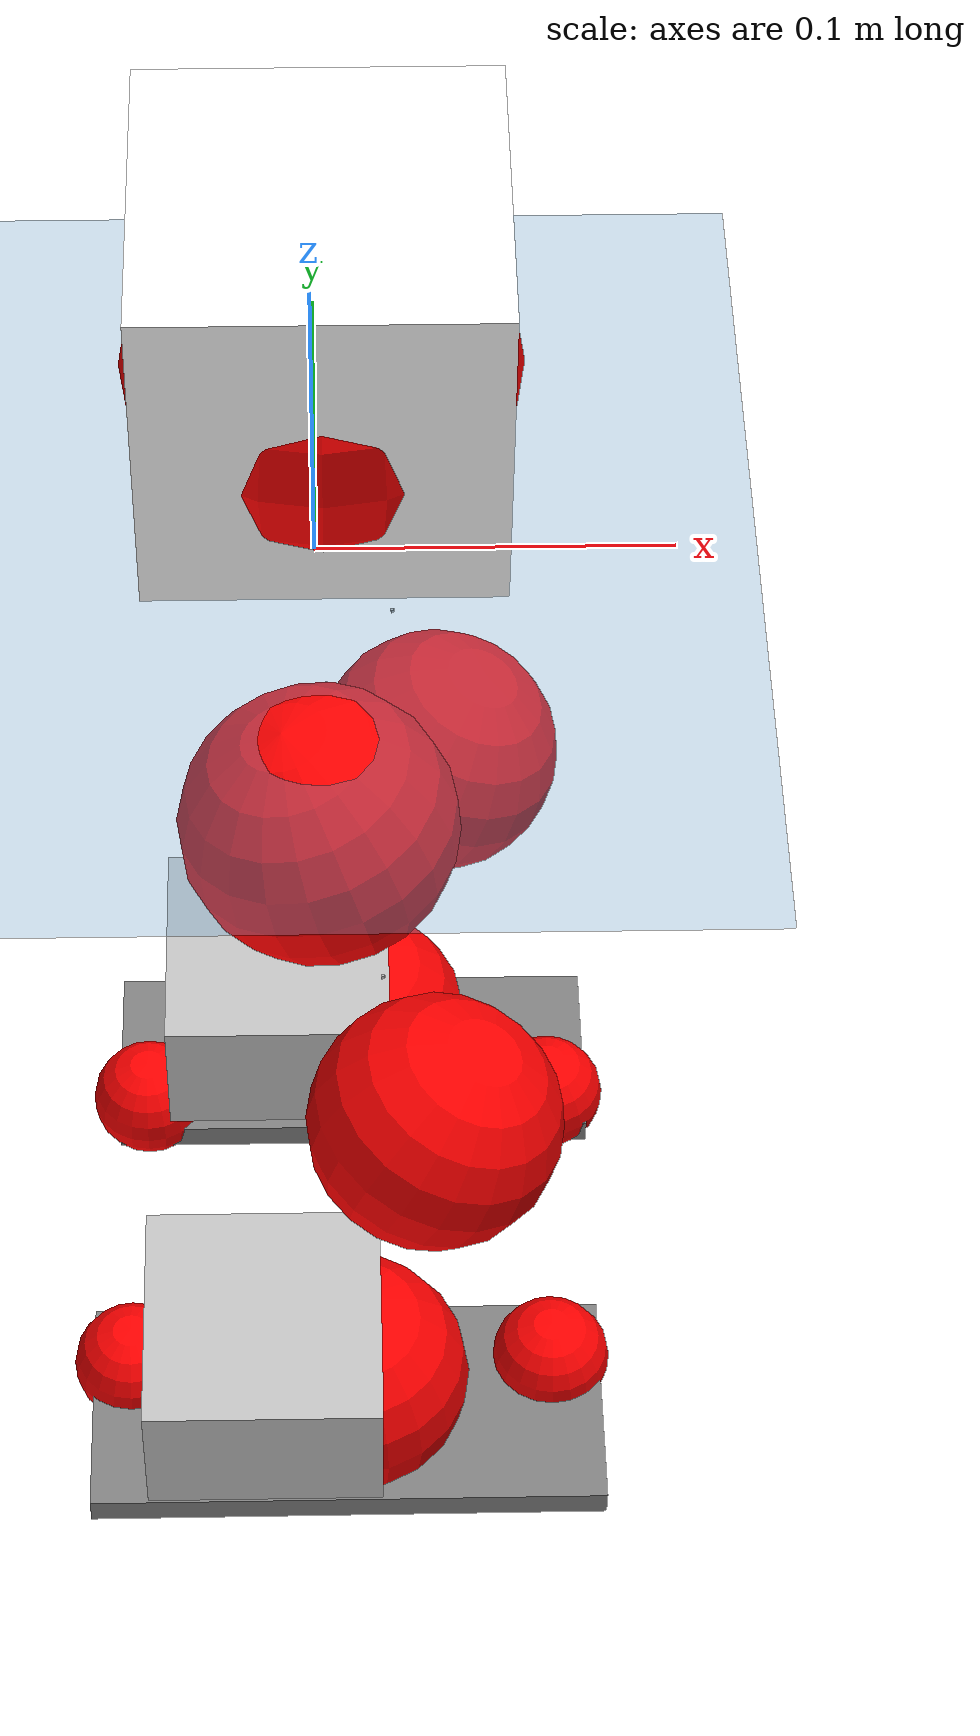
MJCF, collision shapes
<mujoco model="pi_12dof_release_v1">
  <compiler angle="radian" assetdir="assets" balanceinertia="true" inertiafromgeom="false"/>

  <option timestep="0.005" density="1.2" viscosity="2e-05"/>

  <size nkey="1"/>

  <visual>
    <quality shadowsize="8192"/>
    <map shadowclip="0.5"/>
  </visual>

  <default>
    <default class="/">
      <joint armature="0.01" damping="0.01" frictionloss="0.01"/>
      <geom contype="0" conaffinity="0" group="1" solref="-1000 -80"/>
      <site size="0.01 0.005 0.005" group="5"/>
      <general forcelimited="true" biastype="affine" gainprm="20" biasprm="0 -20 -0.5"/>
      <default class="foot">
        <geom size="0.0845 0.036 0.005" type="box" condim="6" group="4" priority="1" friction="0.9 0.2 0.2" solimp="0.015 1 0.005"/>
      </default>
      <default class="reward_collision_sphere">
        <geom group="5" rgba="1 0 0 1"/>
      </default>
    </default>
  </default>

  <asset>
    <texture type="skybox" colorspace="auto" name="//unnamed_texture_0" builtin="gradient" rgb1="0.95 0.95 0.95" rgb2="0.95 0.95 0.95" width="100" height="600"/>
    <texture type="2d" colorspace="auto" name="texplane" builtin="checker" rgb1="0.345 0.575 0.748" rgb2="0.345 0.575 0.748" markrgb="1 1 1" width="512" height="512"/>
    <material name="MatPlane" class="/" texture="texplane" texuniform="true" texrepeat="2 2" specular="0.9"/>
    <mesh name="baselink_1" class="/" file="baselink_1.STL"/>
    <mesh name="r_hip_pitch_link" class="/" file="r_hip_pitch_link.STL"/>
    <mesh name="r_hip_roll_link" class="/" file="r_hip_roll_link.STL"/>
    <mesh name="r_thigh_link" class="/" file="r_thigh_link.STL"/>
    <mesh name="r_calf_link" class="/" file="r_calf_link.STL"/>
    <mesh name="r_ankle_pitch_link" class="/" file="r_ankle_pitch_link.STL"/>
    <mesh name="r_ankle_roll_link" class="/" file="r_ankle_roll_link.STL"/>
    <mesh name="l_hip_pitch_link" class="/" file="l_hip_pitch_link.STL"/>
    <mesh name="l_hip_roll_link" class="/" file="l_hip_roll_link.STL"/>
    <mesh name="l_thigh_link" class="/" file="l_thigh_link.STL"/>
    <mesh name="l_calf_link" class="/" file="l_calf_link.STL"/>
    <mesh name="l_ankle_pitch_link" class="/" file="l_ankle_pitch_link.STL"/>
    <mesh name="l_ankle_roll_link" class="/" file="l_ankle_roll_link.STL"/>
  </asset>

  <worldbody>
    <geom name="floor" class="/" size="100 100 0.125" type="plane" group="0" material="MatPlane"/>
    <light name="toplight_shadow" class="/" pos="0 0 5" dir="0.0990148 0.0990148 -0.990148" type="directional" ambient="0.04 0.04 0.04" diffuse="0.55 0.55 0.55" specular="0.12 0.12 0.12"/>
    <light name="toplight_fill" class="/" pos="0 0 5" dir="0.0990148 0.0990148 -0.990148" type="directional" castshadow="false" ambient="0.04 0.04 0.04" diffuse="0.3 0.3 0.3" specular="0.08 0.08 0.08"/>
    <body name="trunk" pos="0.00276349 0.000492135 0.000272212" quat="1 -0.00038082 -9.44937e-06 0.000132975">
      <inertial pos="0.00198418 0.000387442 0.0400122" quat="0.695905 0.00166337 0.011452 0.718041" mass="1.99362" diaginertia="0.0122334 0.0053055 0.00405804"/>
      <joint name="//unnamed_joint_0" type="free"/>
      <geom name="//unnamed_geom_1" class="/" type="mesh" density="0" rgba="1 1 1 1" mesh="baselink_1"/>
      <geom name="//unnamed_geom_2" class="/" size="0.048603 0.048603 0.048603" pos="0 0 0.0796226" type="box" rgba="1 1 1 1"/>
      <geom name="//unnamed_geom_3" class="reward_collision_sphere" size="0.0534633" pos="0 0 0.0696698"/>
      <site name="imu" class="/" pos="-0.00284219 0.00496554 -0.012448" size="0.00972059"/>
      <camera name="track" class="/" pos="0 -1.77873 0" quat="0.707107 0.707107 0 0" mode="trackcom"/>
      <camera name="ego_camera" class="/" pos="0.0773646 0 0.179151" quat="-0.5 -0.5 0.5 0.5"/>
      <body name="r_hip_pitch_link" pos="1.6344e-06 -0.0200029 -0.034425" quat="0.992282 0.000266173 -0.123994 -0.00118458">
        <inertial pos="-0.00153999 -0.0514801 0.00012542" quat="-0.0189676 0.706007 -0.0280276 0.707395" mass="0.342295" diaginertia="0.000127746 5.25433e-05 8.16509e-05"/>
        <joint name="r_hip_pitch_joint" class="/" pos="0 0 0" axis="0.0052724 -0.999908 -0.0124857" stiffness="0.00210282" range="-1.69766 1.29654" armature="0.00979164" damping="0.0244025" frictionloss="0.00975869"/>
        <geom name="//unnamed_geom_4" class="/" type="mesh" density="0" rgba="0.75294 0.75294 0.75294 1" mesh="r_hip_pitch_link"/>
        <geom name="//unnamed_geom_5" class="/" size="0.00048603 0.00048603 0.00048603" type="box" rgba="0.75294 0.75294 0.75294 1"/>
        <body name="r_hip_roll_link" pos="-0.00248435 -0.0498824 -0.000767702" quat="1 0.00034146 0.000117061 0.000615506">
          <inertial pos="-0.000995181 -0.000127431 -0.063078" quat="0.704558 -0.0789853 -0.0771839 0.701001" mass="0.357302" diaginertia="0.000392598 0.000154529 0.000124594"/>
          <joint name="r_hip_roll_joint" class="/" pos="0 0 0" axis="-0.999895 -0.0111684 0.00919425" range="-0.14241 0.553121" armature="0.0100185" damping="0" frictionloss="0.0084544"/>
          <geom name="//unnamed_geom_6" class="/" type="mesh" density="0" rgba="0.75294 0.75294 0.75294 1" mesh="r_hip_roll_link"/>
          <geom name="//unnamed_geom_7" class="/" size="0.00048603 0.00048603 0.00048603" type="box" rgba="0.75294 0.75294 0.75294 1"/>
          <geom name="//unnamed_geom_8" class="reward_collision_sphere" size="0.0388824"/>
          <body name="r_thigh_link" pos="0.000682551 -0.00202718 -0.0680784" quat="0.999999 -0.000494275 -0.000488476 0.000957623">
            <inertial pos="0.00170194 0.00141056 -0.0470782" quat="0.729916 0.683495 -0.00101716 -0.00745324" mass="0.109006" diaginertia="0.000144692 5.39708e-05 5.60084e-05"/>
            <joint name="r_thigh_joint" class="/" pos="0 0 0" axis="-0.000392864 -0.0133524 -0.999911" range="-0.250537 0.645641" armature="0.00966148" damping="0.00114918" frictionloss="0.00916889"/>
            <geom name="//unnamed_geom_9" class="/" type="mesh" density="0" rgba="0.75294 0.75294 0.75294 1" mesh="r_thigh_link"/>
            <geom name="//unnamed_geom_10" class="/" size="0.00048603 0.00048603 0.00048603" type="box" rgba="0.75294 0.75294 0.75294 1"/>
            <body name="r_calf_link" pos="-0.00223794 -0.000626608 -0.0722361" quat="0.947667 -5.47551e-05 0.319259 0.000272393">
              <inertial pos="0.00219101 -0.000883765 -0.0720918" quat="0.999879 -0.00268436 0.00286608 0.0150598" mass="0.761434" diaginertia="0.00424584 0.00195015 0.00017596"/>
              <joint name="r_calf_joint" class="/" pos="0 0 0" axis="-5.58166e-05 -0.999976 0.00692936" range="-1.63997 0.64929" armature="0.0104056" damping="0.012146" frictionloss="0.010241"/>
              <geom name="//unnamed_geom_11" class="/" type="mesh" density="0" rgba="0.75294 0.75294 0.75294 1" mesh="r_calf_link"/>
              <geom name="//unnamed_geom_12" class="/" size="0.00048603 0.00048603 0.00048603" type="box" rgba="0.75294 0.75294 0.75294 1"/>
              <geom name="//unnamed_geom_13" class="reward_collision_sphere" size="0.0388824"/>
              <body name="r_ankle_pitch_link" pos="-0.000398538 -0.00146277 -0.137431" quat="0.980072 3.30545e-06 -0.198644 -4.47363e-05">
                <inertial pos="0.00339804 0.00519343 -0.00107816" quat="0.00176163 0.706959 -0.00266636 0.707247" mass="0.161427" diaginertia="0.000362698 0.000121675 0.000117143"/>
                <joint name="r_ankle_pitch_joint" class="/" pos="0 0 0" axis="-0.0134091 -0.999907 0.00264419" stiffness="0.00548142" range="-1.28311 0.50508" armature="0.00849405" damping="0.0137409" frictionloss="0.00846787"/>
                <geom name="//unnamed_geom_14" class="/" type="mesh" density="0" rgba="0.75294 0.75294 0.75294 1" mesh="r_ankle_pitch_link"/>
                <geom name="//unnamed_geom_15" class="/" size="0.0379103 0.0388824 0.0243015" type="box" rgba="0.75294 0.75294 0.75294 1"/>
                <body name="r_ankle_roll_link" pos="0.0794082 0.00429151 0.00286136" quat="0.999999 -0.000752913 0.000429104 0.00084493">
                  <inertial pos="-0.0225631 -0.00203035 -0.0117272" quat="0.564006 0.427686 0.432635 0.558398" mass="0.46575" diaginertia="0.00136414 0.000601734 0.000288631"/>
                  <joint name="r_ankle_roll_joint" class="/" pos="0 0 0" axis="-0.999938 -0.0107985 0.00288187" range="-0.153673 0.172136" armature="0.00938389" damping="0.0199576" frictionloss="0.010237"/>
                  <geom name="//unnamed_geom_16" class="/" type="mesh" density="0" rgba="0.75294 0.75294 0.75294 1" mesh="r_ankle_roll_link"/>
                  <geom name="//unnamed_geom_17" class="/" type="mesh" rgba="0.75294 0.75294 0.75294 1" mesh="r_ankle_roll_link"/>
                  <geom name="right_foot" class="foot" size="0.084266 0.0369853 0.00488644" pos="-0.0526079 0 -0.0437924"/>
                  <geom name="//unnamed_geom_19" class="reward_collision_sphere" size="0.0388824" pos="-0.0515764 0 -0.0199057"/>
                  <geom name="//unnamed_geom_20" class="reward_collision_sphere" size="0.0194412" pos="0.0154729 0.0177873 -0.0398113"/>
                  <geom name="//unnamed_geom_21" class="reward_collision_sphere" size="0.0194412" pos="-0.123783 0.0177873 -0.0398113"/>
                  <site name="right_foot" class="foot" pos="-0.0526079 0 -0.0437924" size="0.00972059"/>
                </body>
              </body>
            </body>
          </body>
        </body>
      </body>
      <body name="l_hip_pitch_link" pos="0.00145986 0.0174125 -0.0327877" quat="0.992215 -0.00023039 -0.124538 -0.000377179">
        <inertial pos="0.00347047 0.0459583 -0.000277929" quat="-0.027402 0.707806 0.0373524 0.704886" mass="0.352444" diaginertia="0.000151219 5.84351e-05 9.50158e-05"/>
        <joint name="l_hip_pitch_joint" class="/" pos="0 0 0" axis="0.00755733 0.999971 -0.000305641" range="-1.30067 1.72962" armature="0.00852732" damping="0.00523157" frictionloss="0.0103683"/>
        <geom name="//unnamed_geom_22" class="/" type="mesh" density="0" rgba="0.75294 0.75294 0.75294 1" mesh="l_hip_pitch_link"/>
        <geom name="//unnamed_geom_23" class="/" size="0.00048603 0.00048603 0.00048603" type="box" rgba="0.75294 0.75294 0.75294 1"/>
        <body name="l_hip_roll_link" pos="0.00281676 0.0509003 -0.000195968" quat="1 -6.03544e-05 -0.000273421 -0.00025174">
          <inertial pos="-0.00152675 0.00242946 -0.06081" quat="0.707592 -0.0782495 -0.0713622 0.69864" mass="0.363991" diaginertia="0.000389565 0.000159329 0.000125981"/>
          <joint name="l_hip_roll_joint" class="/" pos="0 0 0" axis="-0.999985 0.00417208 -0.003447" range="-0.479797 0.135824" armature="0.0111876" damping="0" frictionloss="0.00878862"/>
          <geom name="//unnamed_geom_24" class="/" type="mesh" density="0" rgba="0.75294 0.75294 0.75294 1" mesh="l_hip_roll_link"/>
          <geom name="//unnamed_geom_25" class="/" size="0.00048603 0.00048603 0.00048603" type="box" rgba="0.75294 0.75294 0.75294 1"/>
          <geom name="//unnamed_geom_26" class="reward_collision_sphere" size="0.0388824"/>
          <body name="l_thigh_link" pos="-0.0016059 0.00215638 -0.0712044" quat="0.999999 0.000807569 -0.000288654 0.000726051">
            <inertial pos="-0.000738095 -0.00151566 -0.0453389" quat="0.677988 0.735031 0.00657618 0.00429385" mass="0.100148" diaginertia="0.0001452 5.20482e-05 5.70034e-05"/>
            <joint name="l_thigh_joint" class="/" pos="0 0 0" axis="0.00245381 0.000800465 -0.999997" range="-0.65286 0.318866" armature="0.00992621" damping="0" frictionloss="0.00941813"/>
            <geom name="//unnamed_geom_27" class="/" type="mesh" density="0" rgba="0.75294 0.75294 0.75294 1" mesh="l_thigh_link"/>
            <geom name="//unnamed_geom_28" class="/" size="0.00048603 0.00048603 0.00048603" type="box" rgba="0.75294 0.75294 0.75294 1"/>
            <body name="l_calf_link" pos="-0.0030087 0.00214555 -0.0697746" quat="0.947663 -1.69107e-05 0.319273 -3.73085e-06">
              <inertial pos="0.00300134 0.00414518 -0.0703172" quat="0.999848 0.0152208 0.000302045 0.00844443" mass="0.758525" diaginertia="0.00426778 0.00203099 0.000177492"/>
              <joint name="l_calf_joint" class="/" pos="0 0 0" axis="-0.0042938 0.999906 0.0130106" range="-0.59936 1.66272" armature="0.00952117" damping="0.00460383" frictionloss="0.00835855"/>
              <geom name="//unnamed_geom_29" class="/" type="mesh" density="0" rgba="0.75294 0.75294 0.75294 1" mesh="l_calf_link"/>
              <geom name="//unnamed_geom_30" class="/" size="0.00048603 0.00048603 0.00048603" type="box" rgba="0.75294 0.75294 0.75294 1"/>
              <geom name="//unnamed_geom_31" class="reward_collision_sphere" size="0.0388824"/>
              <body name="l_ankle_pitch_link" pos="5.11259e-05 0.00158058 -0.137189" quat="0.980091 -0.000166191 -0.19855 -1.81482e-05">
                <inertial pos="0.00464932 -0.000519922 -0.000683834" quat="0.000480744 0.714158 -0.00120663 0.699984" mass="0.164072" diaginertia="0.000360037 0.000128427 0.000120789"/>
                <joint name="l_ankle_pitch_joint" class="/" pos="0 0 0" axis="0.000456326 0.999999 0.00115835" range="-0.459846 1.3499" armature="0.00998236" damping="0" frictionloss="0.00921297"/>
                <geom name="//unnamed_geom_32" class="/" type="mesh" density="0" rgba="0.75294 0.75294 0.75294 1" mesh="l_ankle_pitch_link"/>
                <geom name="//unnamed_geom_33" class="/" size="0.0379103 0.0388824 0.0243015" type="box" rgba="0.75294 0.75294 0.75294 1"/>
                <body name="l_ankle_roll_link" pos="0.0777461 0.0010928 -0.000449865" quat="1 -2.26361e-05 0.000292461 -4.40969e-05">
                  <inertial pos="-0.0278893 -0.00235307 -0.0118443" quat="0.559681 0.430827 0.43437 0.558988" mass="0.497092" diaginertia="0.00129222 0.000598727 0.000277785"/>
                  <joint name="l_ankle_roll_joint" class="/" pos="0 0 0" axis="-0.999999 -5.36875e-05 -0.00137051" stiffness="0.010166" range="-0.17141 0.108801" armature="0.00920844" damping="0.0207427" frictionloss="0.0110726"/>
                  <geom name="//unnamed_geom_34" class="/" type="mesh" density="0" rgba="0.75294 0.75294 0.75294 1" mesh="l_ankle_roll_link"/>
                  <geom name="//unnamed_geom_35" class="/" type="mesh" rgba="0.75294 0.75294 0.75294 1" mesh="l_ankle_roll_link"/>
                  <geom name="left_foot" class="foot" size="0.0814628 0.0326342 0.00470092" pos="-0.0526079 0 -0.0437924"/>
                  <geom name="//unnamed_geom_37" class="reward_collision_sphere" size="0.0388824" pos="-0.0515764 0 -0.0199057"/>
                  <geom name="//unnamed_geom_38" class="reward_collision_sphere" size="0.0194412" pos="0.0154729 -0.0177873 -0.0398113"/>
                  <geom name="//unnamed_geom_39" class="reward_collision_sphere" size="0.0194412" pos="-0.123783 -0.0177873 -0.0398113"/>
                  <site name="left_foot" class="foot" pos="-0.0526079 0 -0.0437924" size="0.00972059"/>
                </body>
              </body>
            </body>
          </body>
        </body>
      </body>
    </body>
  </worldbody>

  <contact>
    <pair class="/" geom1="floor" geom2="right_foot" name="//unnamed_contact_1"/>
    <pair class="/" geom1="floor" geom2="left_foot" name="//unnamed_contact_0"/>
  </contact>

  <actuator>
    <general name="r_hip_pitch_joint" class="/" joint="r_hip_pitch_joint" forcerange="-21.2265 21.2265" gainprm="19.169" biasprm="0 -19.169 -0.498052"/>
    <general name="r_hip_roll_joint" class="/" joint="r_hip_roll_joint" forcerange="-22.5074 22.5074" gainprm="19.169" biasprm="0 -19.169 -0.498052"/>
    <general name="r_thigh_joint" class="/" joint="r_thigh_joint" forcerange="-20.1416 20.1416" gainprm="19.169" biasprm="0 -19.169 -0.498052"/>
    <general name="r_calf_joint" class="/" joint="r_calf_joint" forcerange="-22.2563 22.2563" gainprm="19.169" biasprm="0 -19.169 -0.498052"/>
    <general name="r_ankle_pitch_joint" class="/" joint="r_ankle_pitch_joint" forcerange="-20.8605 20.8605" gainprm="19.169" biasprm="0 -19.169 -0.498052"/>
    <general name="r_ankle_roll_joint" class="/" joint="r_ankle_roll_joint" forcerange="-20.1122 20.1122" gainprm="19.169" biasprm="0 -19.169 -0.498052"/>
    <general name="l_hip_pitch_joint" class="/" joint="l_hip_pitch_joint" forcerange="-20.4593 20.4593" gainprm="19.169" biasprm="0 -19.169 -0.498052"/>
    <general name="l_hip_roll_joint" class="/" joint="l_hip_roll_joint" forcerange="-18.2877 18.2877" gainprm="19.169" biasprm="0 -19.169 -0.498052"/>
    <general name="l_thigh_joint" class="/" joint="l_thigh_joint" forcerange="-21.0445 21.0445" gainprm="19.169" biasprm="0 -19.169 -0.498052"/>
    <general name="l_calf_joint" class="/" joint="l_calf_joint" forcerange="-20.5722 20.5722" gainprm="19.169" biasprm="0 -19.169 -0.498052"/>
    <general name="l_ankle_pitch_joint" class="/" joint="l_ankle_pitch_joint" forcerange="-19.7443 19.7443" gainprm="19.169" biasprm="0 -19.169 -0.498052"/>
    <general name="l_ankle_roll_joint" class="/" joint="l_ankle_roll_joint" forcerange="-21.951 21.951" gainprm="19.169" biasprm="0 -19.169 -0.498052"/>
  </actuator>

  <sensor>
    <gyro site="imu" name="imu_angular_velocity"/>
    <velocimeter site="imu" name="imu_linear_velocity"/>
    <framelinvel objtype="site" objname="left_foot" name="left_foot_global_linear_velocity"/>
    <framelinvel objtype="site" objname="right_foot" name="right_foot_global_linear_velocity"/>
  </sensor>

  <keyframe>
    <key name="home" qpos="0 0 0.291 1 0 0 0 0.4 0 0 -0.8 0.4 0 -0.4 0 0 0.8 -0.4 0"/>
  </keyframe>
</mujoco>
